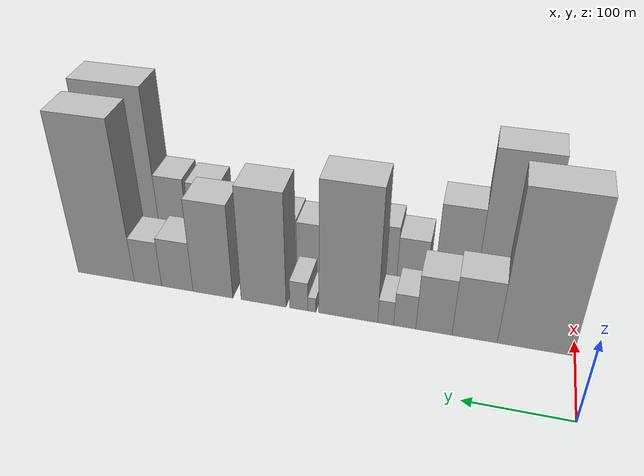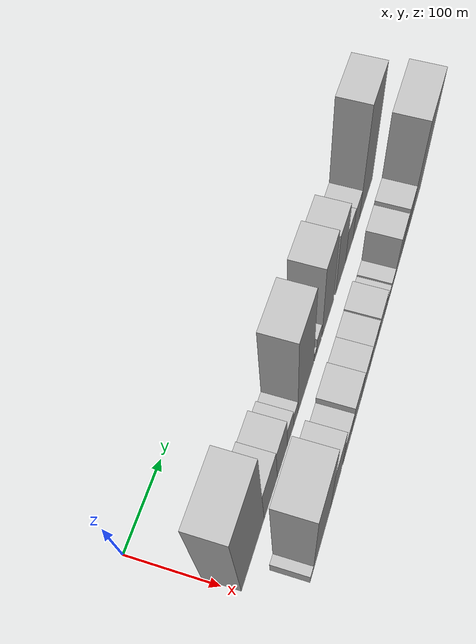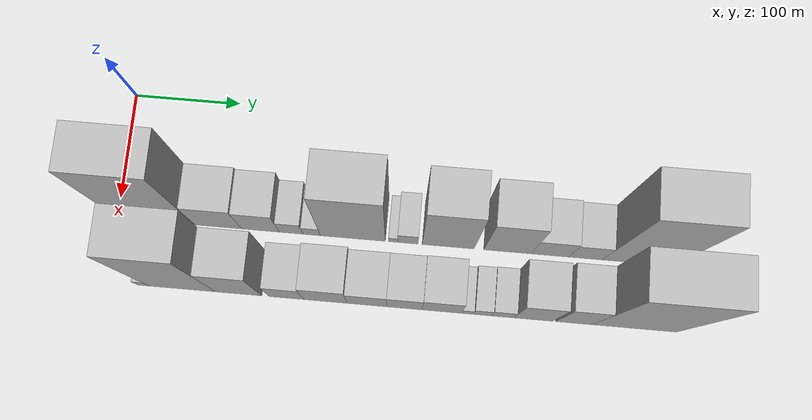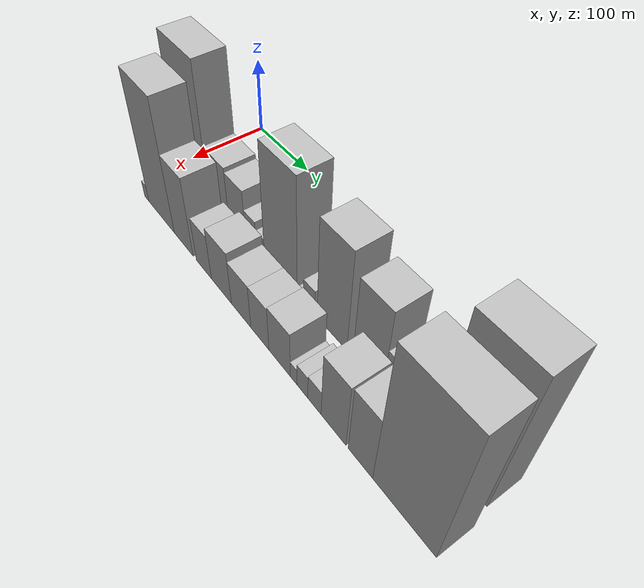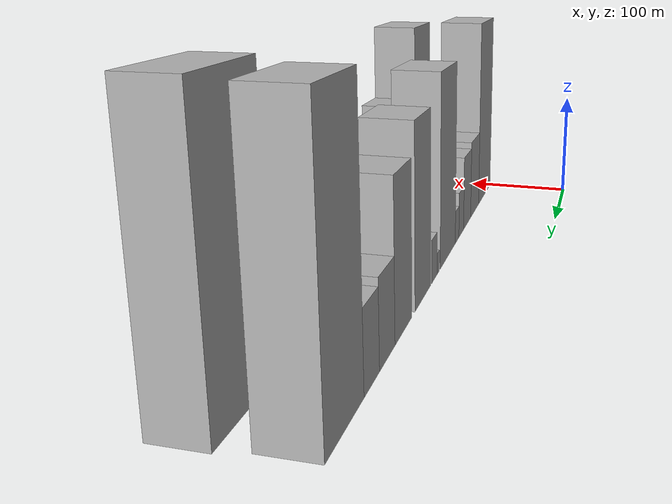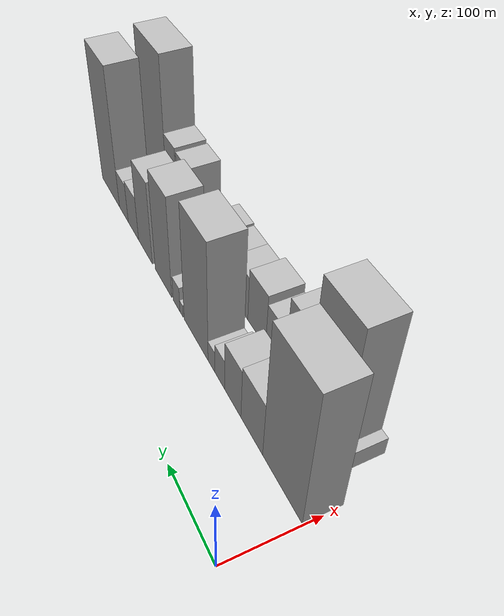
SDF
<sdf version="1.6">
 <world name="default">
  <model name="building_12">
   <static>1</static>
   <pose>100.0000 36.9097 0 0.000000 0.000000 0.000000</pose>
   <link name="link">
    <pose>0 0 91.50 0 0 0</pose>
    <collision name="collision"><geometry><box><size>40.0000 71.1620 183.0000</size></box></geometry></collision>
    <visual name="visual">
     <cast_shadows>0</cast_shadows>
     <geometry><box><size>40.0000 71.1620 183.0000</size></box></geometry>
     <material>
      <script>
       <uri>model://HANNAS_wall/materials/scripts</uri>
       <uri>model://HANNAS_wall/materials/textures</uri>
       <name>vrc/HANNAS_wall</name>
      </script>
     </material>
    </visual>
   </link>
  </model>
  <model name="building_13">
   <static>1</static>
   <pose>100.0000 94.2448 0 0.000000 0.000000 0.000000</pose>
   <link name="link">
    <pose>0 0 37.50 0 0 0</pose>
    <collision name="collision"><geometry><box><size>40.0000 43.5082 75.0000</size></box></geometry></collision>
    <visual name="visual">
     <cast_shadows>0</cast_shadows>
     <geometry><box><size>40.0000 43.5082 75.0000</size></box></geometry>
     <material>
      <script>
       <uri>model://HANNAS_wall/materials/scripts</uri>
       <uri>model://HANNAS_wall/materials/textures</uri>
       <name>vrc/HANNAS_wall</name>
      </script>
     </material>
    </visual>
   </link>
  </model>
  <model name="building_14">
   <static>1</static>
   <pose>100.0000 133.6584 0 0.000000 0.000000 0.000000</pose>
   <link name="link">
    <pose>0 0 34.50 0 0 0</pose>
    <collision name="collision"><geometry><box><size>40.0000 35.3190 69.0000</size></box></geometry></collision>
    <visual name="visual">
     <cast_shadows>0</cast_shadows>
     <geometry><box><size>40.0000 35.3190 69.0000</size></box></geometry>
     <material>
      <script>
       <uri>model://HANNAS_wall/materials/scripts</uri>
       <uri>model://HANNAS_wall/materials/textures</uri>
       <name>vrc/HANNAS_wall</name>
      </script>
     </material>
    </visual>
   </link>
  </model>
  <model name="building_15">
   <static>1</static>
   <pose>100.0000 162.3067 0 0.000000 0.000000 0.000000</pose>
   <link name="link">
    <pose>0 0 21.00 0 0 0</pose>
    <collision name="collision"><geometry><box><size>40.0000 21.9776 42.0000</size></box></geometry></collision>
    <visual name="visual">
     <cast_shadows>0</cast_shadows>
     <geometry><box><size>40.0000 21.9776 42.0000</size></box></geometry>
     <material>
      <script>
       <uri>model://HANNAS_wall/materials/scripts</uri>
       <uri>model://HANNAS_wall/materials/textures</uri>
       <name>vrc/HANNAS_wall</name>
      </script>
     </material>
    </visual>
   </link>
  </model>
  <model name="building_16">
   <static>1</static>
   <pose>100.0000 181.3218 0 0.000000 0.000000 0.000000</pose>
   <link name="link">
    <pose>0 0 15.00 0 0 0</pose>
    <collision name="collision"><geometry><box><size>40.0000 16.0527 30.0000</size></box></geometry></collision>
    <visual name="visual">
     <cast_shadows>0</cast_shadows>
     <geometry><box><size>40.0000 16.0527 30.0000</size></box></geometry>
     <material>
      <script>
       <uri>model://HANNAS_wall/materials/scripts</uri>
       <uri>model://HANNAS_wall/materials/textures</uri>
       <name>vrc/HANNAS_wall</name>
      </script>
     </material>
    </visual>
   </link>
  </model>
  <model name="building_17">
   <static>1</static>
   <pose>100.0000 219.3561 0 0.000000 0.000000 0.000000</pose>
   <link name="link">
    <pose>0 0 81.00 0 0 0</pose>
    <collision name="collision"><geometry><box><size>40.0000 60.0159 162.0000</size></box></geometry></collision>
    <visual name="visual">
     <cast_shadows>0</cast_shadows>
     <geometry><box><size>40.0000 60.0159 162.0000</size></box></geometry>
     <material>
      <script>
       <uri>model://HANNAS_wall/materials/scripts</uri>
       <uri>model://HANNAS_wall/materials/textures</uri>
       <name>vrc/HANNAS_wall</name>
      </script>
     </material>
    </visual>
   </link>
  </model>
  <model name="building_18">
   <static>1</static>
   <pose>100.0000 256.5494 0 0.000000 0.000000 0.000000</pose>
   <link name="link">
    <pose>0 0 9.00 0 0 0</pose>
    <collision name="collision"><geometry><box><size>40.0000 8.3707 18.0000</size></box></geometry></collision>
    <visual name="visual">
     <cast_shadows>0</cast_shadows>
     <geometry><box><size>40.0000 8.3707 18.0000</size></box></geometry>
     <material>
      <script>
       <uri>model://HANNAS_wall/materials/scripts</uri>
       <uri>model://HANNAS_wall/materials/textures</uri>
       <name>vrc/HANNAS_wall</name>
      </script>
     </material>
    </visual>
   </link>
  </model>
  <model name="building_19">
   <static>1</static>
   <pose>100.0000 270.1249 0 0.000000 0.000000 0.000000</pose>
   <link name="link">
    <pose>0 0 18.00 0 0 0</pose>
    <collision name="collision"><geometry><box><size>40.0000 18.7804 36.0000</size></box></geometry></collision>
    <visual name="visual">
     <cast_shadows>0</cast_shadows>
     <geometry><box><size>40.0000 18.7804 36.0000</size></box></geometry>
     <material>
      <script>
       <uri>model://HANNAS_wall/materials/scripts</uri>
       <uri>model://HANNAS_wall/materials/textures</uri>
       <name>vrc/HANNAS_wall</name>
      </script>
     </material>
    </visual>
   </link>
  </model>
  <model name="building_20">
   <static>1</static>
   <pose>100.0000 307.4246 0 0.000000 0.000000 0.000000</pose>
   <link name="link">
    <pose>0 0 70.50 0 0 0</pose>
    <collision name="collision"><geometry><box><size>40.0000 47.8190 141.0000</size></box></geometry></collision>
    <visual name="visual">
     <cast_shadows>0</cast_shadows>
     <geometry><box><size>40.0000 47.8190 141.0000</size></box></geometry>
     <material>
      <script>
       <uri>model://HANNAS_wall/materials/scripts</uri>
       <uri>model://HANNAS_wall/materials/textures</uri>
       <name>vrc/HANNAS_wall</name>
      </script>
     </material>
    </visual>
   </link>
  </model>
  <model name="building_21">
   <static>1</static>
   <pose>100.0000 362.0778 0 0.000000 0.000000 0.000000</pose>
   <link name="link">
    <pose>0 0 58.50 0 0 0</pose>
    <collision name="collision"><geometry><box><size>40.0000 43.4873 117.0000</size></box></geometry></collision>
    <visual name="visual">
     <cast_shadows>0</cast_shadows>
     <geometry><box><size>40.0000 43.4873 117.0000</size></box></geometry>
     <material>
      <script>
       <uri>model://HANNAS_wall/materials/scripts</uri>
       <uri>model://HANNAS_wall/materials/textures</uri>
       <name>vrc/HANNAS_wall</name>
      </script>
     </material>
    </visual>
   </link>
  </model>
  <model name="building_22">
   <static>1</static>
   <pose>100.0000 401.2309 0 0.000000 0.000000 0.000000</pose>
   <link name="link">
    <pose>0 0 31.50 0 0 0</pose>
    <collision name="collision"><geometry><box><size>40.0000 34.8189 63.0000</size></box></geometry></collision>
    <visual name="visual">
     <cast_shadows>0</cast_shadows>
     <geometry><box><size>40.0000 34.8189 63.0000</size></box></geometry>
     <material>
      <script>
       <uri>model://HANNAS_wall/materials/scripts</uri>
       <uri>model://HANNAS_wall/materials/textures</uri>
       <name>vrc/HANNAS_wall</name>
      </script>
     </material>
    </visual>
   </link>
  </model>
  <model name="building_23">
   <static>1</static>
   <pose>100.0000 434.0289 0 0.000000 0.000000 0.000000</pose>
   <link name="link">
    <pose>0 0 28.50 0 0 0</pose>
    <collision name="collision"><geometry><box><size>40.0000 30.7771 57.0000</size></box></geometry></collision>
    <visual name="visual">
     <cast_shadows>0</cast_shadows>
     <geometry><box><size>40.0000 30.7771 57.0000</size></box></geometry>
     <material>
      <script>
       <uri>model://HANNAS_wall/materials/scripts</uri>
       <uri>model://HANNAS_wall/materials/textures</uri>
       <name>vrc/HANNAS_wall</name>
      </script>
     </material>
    </visual>
   </link>
  </model>
  <model name="building_24">
   <static>1</static>
   <pose>100.0000 481.6502 0 0.000000 0.000000 0.000000</pose>
   <link name="link">
    <pose>0 0 97.50 0 0 0</pose>
    <collision name="collision"><geometry><box><size>40.0000 64.4656 195.0000</size></box></geometry></collision>
    <visual name="visual">
     <cast_shadows>0</cast_shadows>
     <geometry><box><size>40.0000 64.4656 195.0000</size></box></geometry>
     <material>
      <script>
       <uri>model://HANNAS_wall/materials/scripts</uri>
       <uri>model://HANNAS_wall/materials/textures</uri>
       <name>vrc/HANNAS_wall</name>
      </script>
     </material>
    </visual>
   </link>
  </model>
  <model name="building_38">
   <static>1</static>
   <pose>160.0000 32.8949 0 0.000000 0.000000 0.000000</pose>
   <link name="link">
    <pose>0 0 12.00 0 0 0</pose>
    <collision name="collision"><geometry><box><size>40.0000 10.5489 24.0000</size></box></geometry></collision>
    <visual name="visual">
     <cast_shadows>0</cast_shadows>
     <geometry><box><size>40.0000 10.5489 24.0000</size></box></geometry>
     <material>
      <script>
       <uri>model://HANNAS_wall/materials/scripts</uri>
       <uri>model://HANNAS_wall/materials/textures</uri>
       <name>vrc/HANNAS_wall</name>
      </script>
     </material>
    </visual>
   </link>
  </model>
  <model name="building_39">
   <static>1</static>
   <pose>160.0000 68.9535 0 0.000000 0.000000 0.000000</pose>
   <link name="link">
    <pose>0 0 90.00 0 0 0</pose>
    <collision name="collision"><geometry><box><size>40.0000 61.5685 180.0000</size></box></geometry></collision>
    <visual name="visual">
     <cast_shadows>0</cast_shadows>
     <geometry><box><size>40.0000 61.5685 180.0000</size></box></geometry>
     <material>
      <script>
       <uri>model://HANNAS_wall/materials/scripts</uri>
       <uri>model://HANNAS_wall/materials/textures</uri>
       <name>vrc/HANNAS_wall</name>
      </script>
     </material>
    </visual>
   </link>
  </model>
  <model name="building_40">
   <static>1</static>
   <pose>160.0000 120.7845 0 0.000000 0.000000 0.000000</pose>
   <link name="link">
    <pose>0 0 55.50 0 0 0</pose>
    <collision name="collision"><geometry><box><size>40.0000 42.0934 111.0000</size></box></geometry></collision>
    <visual name="visual">
     <cast_shadows>0</cast_shadows>
     <geometry><box><size>40.0000 42.0934 111.0000</size></box></geometry>
     <material>
      <script>
       <uri>model://HANNAS_wall/materials/scripts</uri>
       <uri>model://HANNAS_wall/materials/textures</uri>
       <name>vrc/HANNAS_wall</name>
      </script>
     </material>
    </visual>
   </link>
  </model>
  <model name="building_41">
   <static>1</static>
   <pose>160.0000 164.6068 0 0.000000 0.000000 0.000000</pose>
   <link name="link">
    <pose>0 0 31.50 0 0 0</pose>
    <collision name="collision"><geometry><box><size>40.0000 31.5514 63.0000</size></box></geometry></collision>
    <visual name="visual">
     <cast_shadows>0</cast_shadows>
     <geometry><box><size>40.0000 31.5514 63.0000</size></box></geometry>
     <material>
      <script>
       <uri>model://HANNAS_wall/materials/scripts</uri>
       <uri>model://HANNAS_wall/materials/textures</uri>
       <name>vrc/HANNAS_wall</name>
      </script>
     </material>
    </visual>
   </link>
  </model>
  <model name="building_42">
   <static>1</static>
   <pose>160.0000 200.2568 0 0.000000 0.000000 0.000000</pose>
   <link name="link">
    <pose>0 0 37.50 0 0 0</pose>
    <collision name="collision"><geometry><box><size>40.0000 39.7485 75.0000</size></box></geometry></collision>
    <visual name="visual">
     <cast_shadows>0</cast_shadows>
     <geometry><box><size>40.0000 39.7485 75.0000</size></box></geometry>
     <material>
      <script>
       <uri>model://HANNAS_wall/materials/scripts</uri>
       <uri>model://HANNAS_wall/materials/textures</uri>
       <name>vrc/HANNAS_wall</name>
      </script>
     </material>
    </visual>
   </link>
  </model>
  <model name="building_43">
   <static>1</static>
   <pose>160.0000 238.1551 0 0.000000 0.000000 0.000000</pose>
   <link name="link">
    <pose>0 0 31.50 0 0 0</pose>
    <collision name="collision"><geometry><box><size>40.0000 36.0481 63.0000</size></box></geometry></collision>
    <visual name="visual">
     <cast_shadows>0</cast_shadows>
     <geometry><box><size>40.0000 36.0481 63.0000</size></box></geometry>
     <material>
      <script>
       <uri>model://HANNAS_wall/materials/scripts</uri>
       <uri>model://HANNAS_wall/materials/textures</uri>
       <name>vrc/HANNAS_wall</name>
      </script>
     </material>
    </visual>
   </link>
  </model>
  <model name="building_44">
   <static>1</static>
   <pose>160.0000 272.0808 0 0.000000 0.000000 0.000000</pose>
   <link name="link">
    <pose>0 0 31.50 0 0 0</pose>
    <collision name="collision"><geometry><box><size>40.0000 31.8033 63.0000</size></box></geometry></collision>
    <visual name="visual">
     <cast_shadows>0</cast_shadows>
     <geometry><box><size>40.0000 31.8033 63.0000</size></box></geometry>
     <material>
      <script>
       <uri>model://HANNAS_wall/materials/scripts</uri>
       <uri>model://HANNAS_wall/materials/textures</uri>
       <name>vrc/HANNAS_wall</name>
      </script>
     </material>
    </visual>
   </link>
  </model>
  <model name="building_45">
   <static>1</static>
   <pose>160.0000 305.8310 0 0.000000 0.000000 0.000000</pose>
   <link name="link">
    <pose>0 0 33.00 0 0 0</pose>
    <collision name="collision"><geometry><box><size>40.0000 35.6972 66.0000</size></box></geometry></collision>
    <visual name="visual">
     <cast_shadows>0</cast_shadows>
     <geometry><box><size>40.0000 35.6972 66.0000</size></box></geometry>
     <material>
      <script>
       <uri>model://HANNAS_wall/materials/scripts</uri>
       <uri>model://HANNAS_wall/materials/textures</uri>
       <name>vrc/HANNAS_wall</name>
      </script>
     </material>
    </visual>
   </link>
  </model>
  <model name="building_46">
   <static>1</static>
   <pose>160.0000 329.0628 0 0.000000 0.000000 0.000000</pose>
   <link name="link">
    <pose>0 0 12.00 0 0 0</pose>
    <collision name="collision"><geometry><box><size>40.0000 10.7664 24.0000</size></box></geometry></collision>
    <visual name="visual">
     <cast_shadows>0</cast_shadows>
     <geometry><box><size>40.0000 10.7664 24.0000</size></box></geometry>
     <material>
      <script>
       <uri>model://HANNAS_wall/materials/scripts</uri>
       <uri>model://HANNAS_wall/materials/textures</uri>
       <name>vrc/HANNAS_wall</name>
      </script>
     </material>
    </visual>
   </link>
  </model>
  <model name="building_47">
   <static>1</static>
   <pose>160.0000 342.7141 0 0.000000 0.000000 0.000000</pose>
   <link name="link">
    <pose>0 0 16.50 0 0 0</pose>
    <collision name="collision"><geometry><box><size>40.0000 16.5361 33.0000</size></box></geometry></collision>
    <visual name="visual">
     <cast_shadows>0</cast_shadows>
     <geometry><box><size>40.0000 16.5361 33.0000</size></box></geometry>
     <material>
      <script>
       <uri>model://HANNAS_wall/materials/scripts</uri>
       <uri>model://HANNAS_wall/materials/textures</uri>
       <name>vrc/HANNAS_wall</name>
      </script>
     </material>
    </visual>
   </link>
  </model>
  <model name="building_48">
   <static>1</static>
   <pose>160.0000 361.0943 0 0.000000 0.000000 0.000000</pose>
   <link name="link">
    <pose>0 0 18.00 0 0 0</pose>
    <collision name="collision"><geometry><box><size>40.0000 20.2243 36.0000</size></box></geometry></collision>
    <visual name="visual">
     <cast_shadows>0</cast_shadows>
     <geometry><box><size>40.0000 20.2243 36.0000</size></box></geometry>
     <material>
      <script>
       <uri>model://HANNAS_wall/materials/scripts</uri>
       <uri>model://HANNAS_wall/materials/textures</uri>
       <name>vrc/HANNAS_wall</name>
      </script>
     </material>
    </visual>
   </link>
  </model>
  <model name="building_49">
   <static>1</static>
   <pose>160.0000 389.0331 0 0.000000 0.000000 0.000000</pose>
   <link name="link">
    <pose>0 0 46.50 0 0 0</pose>
    <collision name="collision"><geometry><box><size>40.0000 35.6534 93.0000</size></box></geometry></collision>
    <visual name="visual">
     <cast_shadows>0</cast_shadows>
     <geometry><box><size>40.0000 35.6534 93.0000</size></box></geometry>
     <material>
      <script>
       <uri>model://HANNAS_wall/materials/scripts</uri>
       <uri>model://HANNAS_wall/materials/textures</uri>
       <name>vrc/HANNAS_wall</name>
      </script>
     </material>
    </visual>
   </link>
  </model>
  <model name="building_50">
   <static>1</static>
   <pose>160.0000 426.1880 0 0.000000 0.000000 0.000000</pose>
   <link name="link">
    <pose>0 0 48.00 0 0 0</pose>
    <collision name="collision"><geometry><box><size>40.0000 32.6564 96.0000</size></box></geometry></collision>
    <visual name="visual">
     <cast_shadows>0</cast_shadows>
     <geometry><box><size>40.0000 32.6564 96.0000</size></box></geometry>
     <material>
      <script>
       <uri>model://HANNAS_wall/materials/scripts</uri>
       <uri>model://HANNAS_wall/materials/textures</uri>
       <name>vrc/HANNAS_wall</name>
      </script>
     </material>
    </visual>
   </link>
  </model>
  <model name="building_51">
   <static>1</static>
   <pose>160.0000 480.8294 0 0.000000 0.000000 0.000000</pose>
   <link name="link">
    <pose>0 0 99.00 0 0 0</pose>
    <collision name="collision"><geometry><box><size>40.0000 76.6263 198.0000</size></box></geometry></collision>
    <visual name="visual">
     <cast_shadows>0</cast_shadows>
     <geometry><box><size>40.0000 76.6263 198.0000</size></box></geometry>
     <material>
      <script>
       <uri>model://HANNAS_wall/materials/scripts</uri>
       <uri>model://HANNAS_wall/materials/textures</uri>
       <name>vrc/HANNAS_wall</name>
      </script>
     </material>
    </visual>
   </link>
  </model>
 </world>
</sdf>
